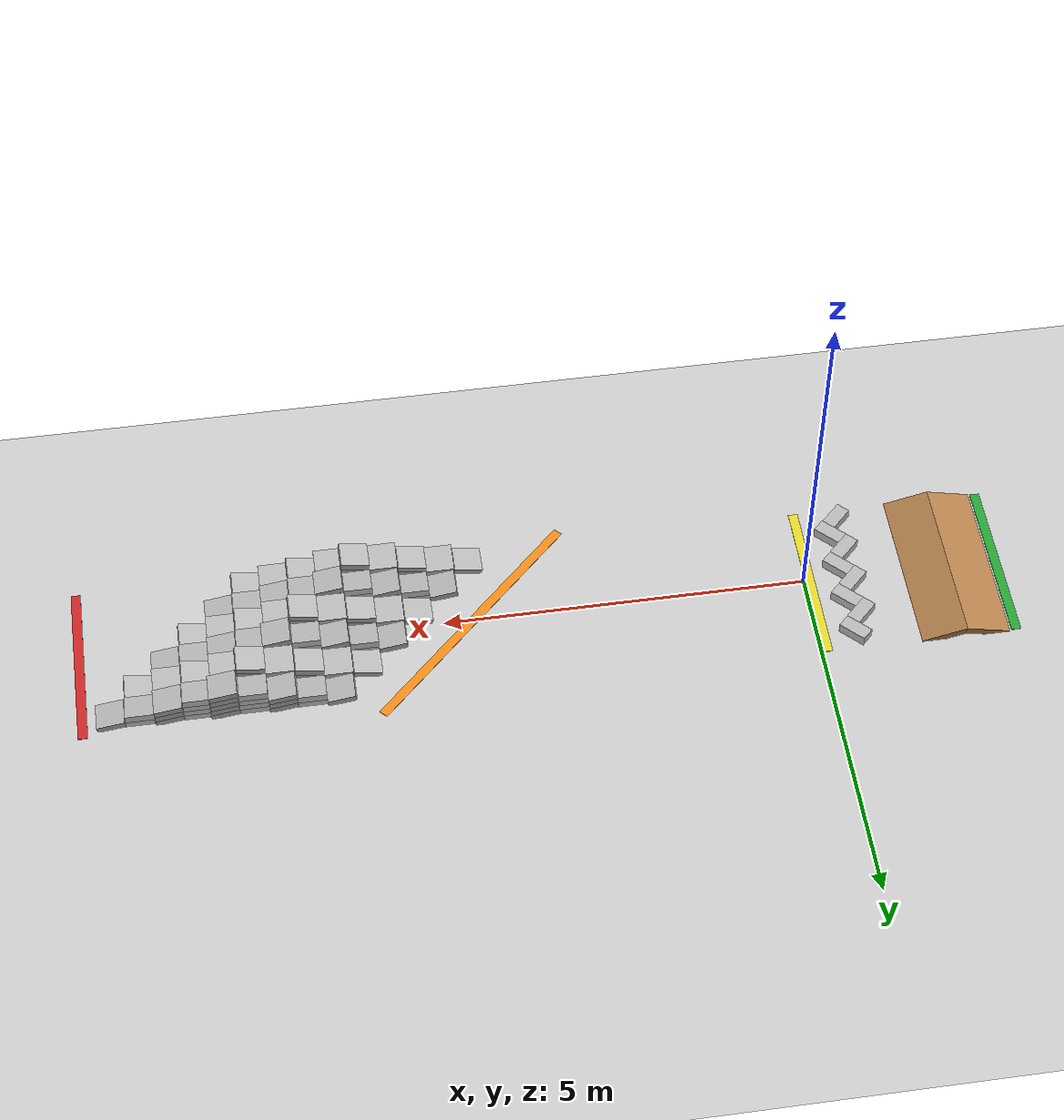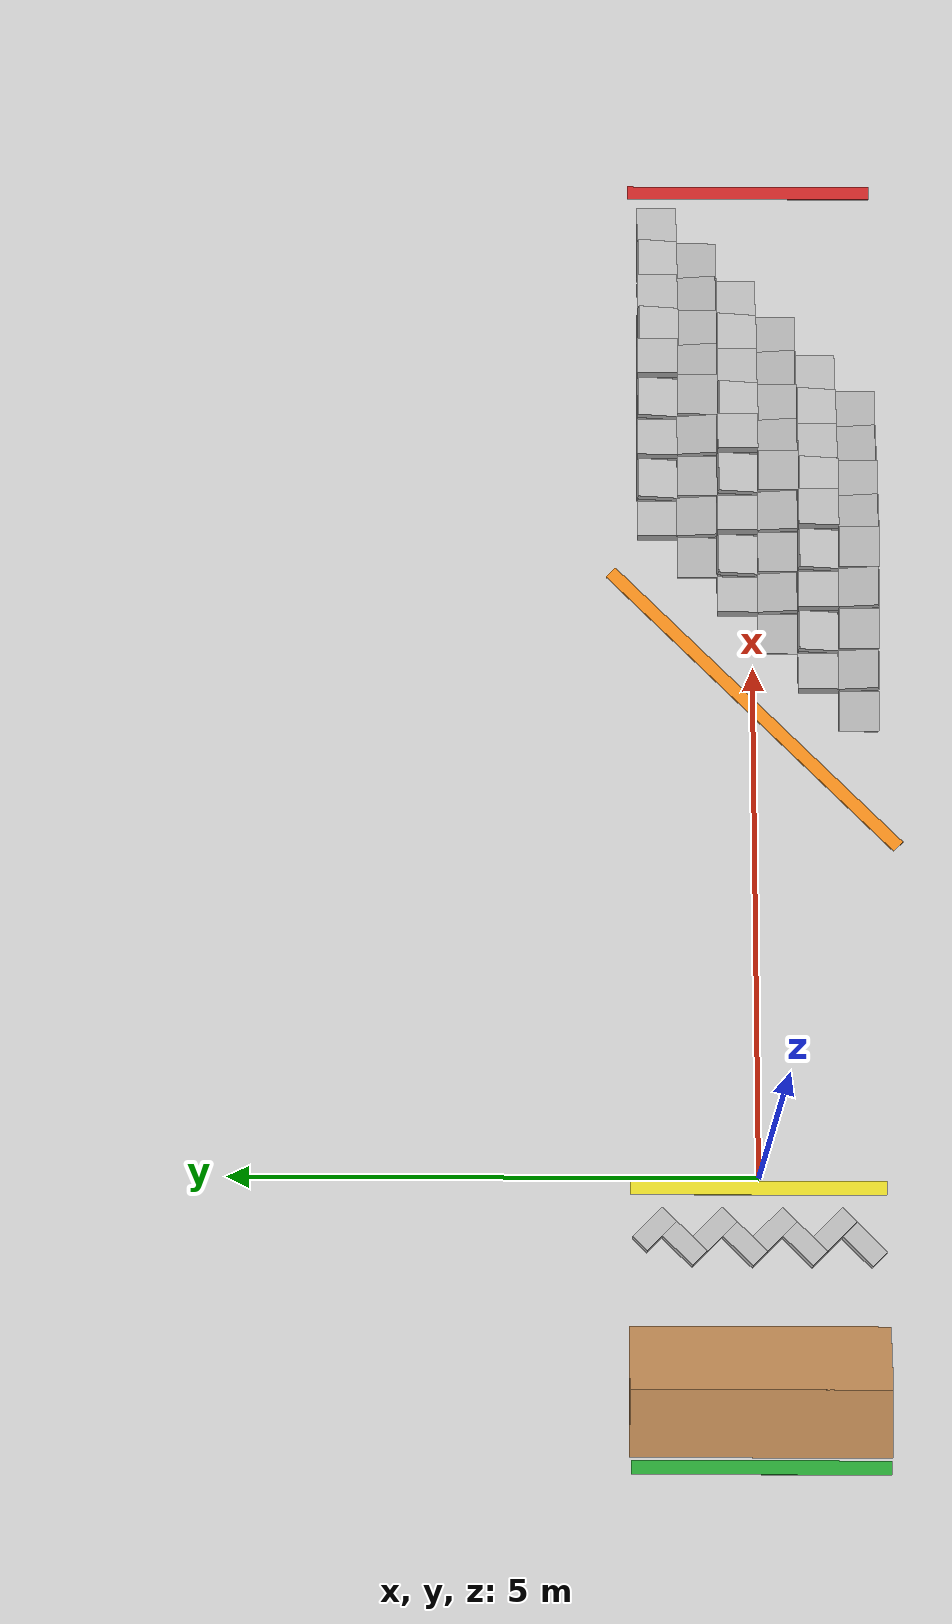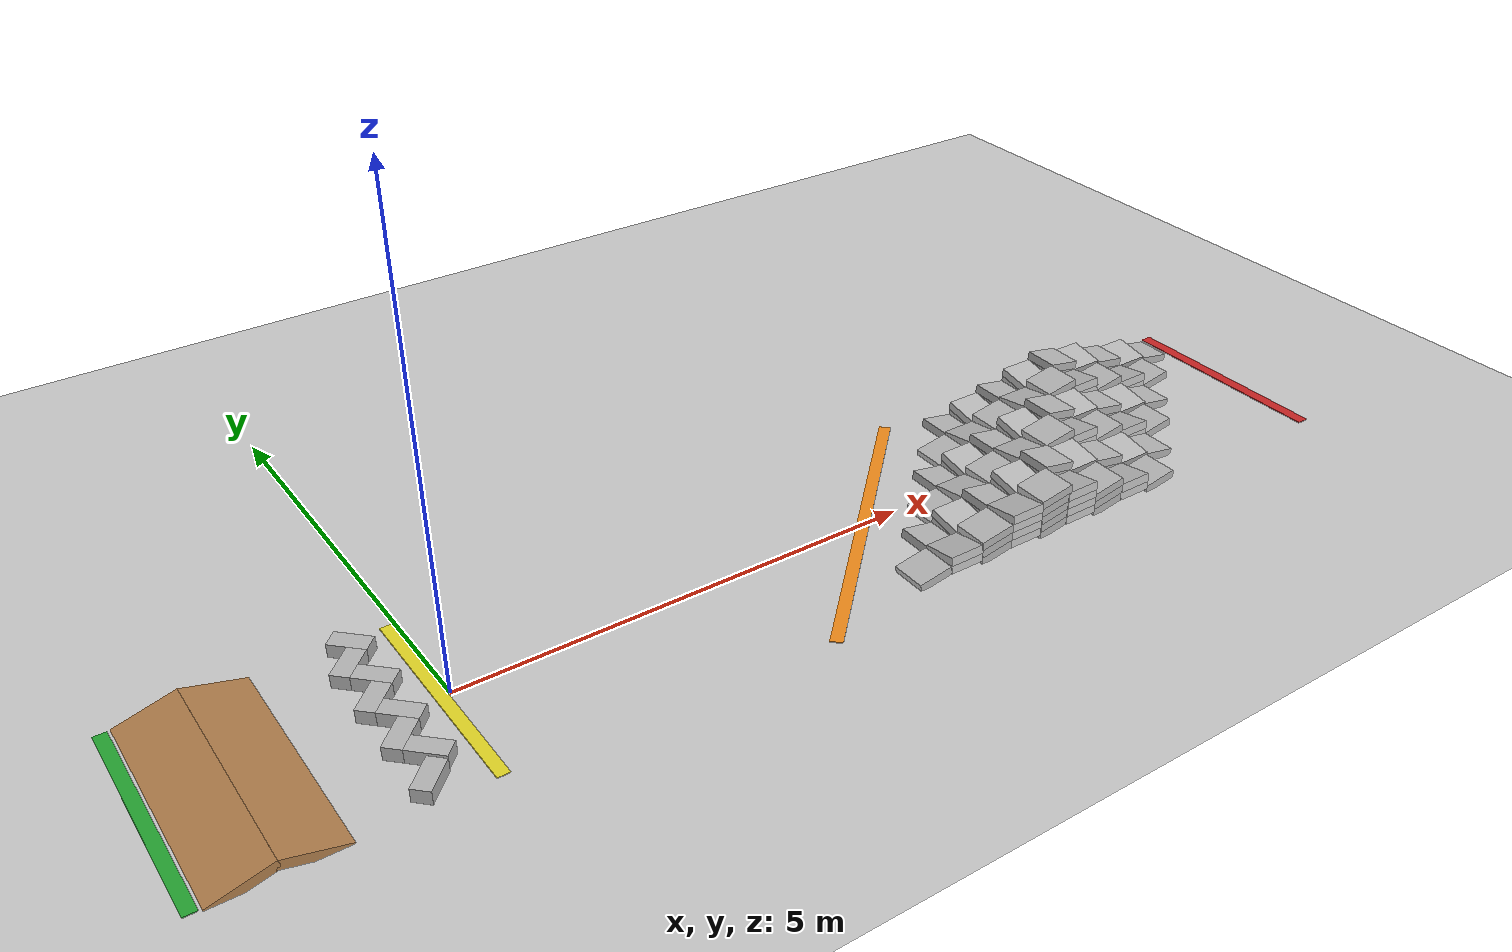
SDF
<sdf version="1.4">
 <world name="trials_task_2">
  <physics type="ode">
   <gravity>0 0 -9.81</gravity>
   <ode>
    <solver>
     <use_dynamic_moi_rescaling>true</use_dynamic_moi_rescaling>
     <type>quick</type>
     <iters>50</iters>
     <sor>1.4</sor>
    </solver>
    <constraints>
     <cfm>0.0</cfm>
     <erp>0.2</erp>
     <contact_max_correcting_vel>100.0</contact_max_correcting_vel>
     <contact_surface_layer>0.0</contact_surface_layer>
    </constraints>
   </ode>
   <real_time_update_rate>1000</real_time_update_rate>
   <max_step_size>0.001</max_step_size>
  </physics>
  <include><uri>model://sun</uri></include>
  <include><uri>model://ground_plane</uri></include>
  <model name="green_tape">
   <static>true</static>
   <pose>-2.7 0 0 0 0 0</pose>
   <link name="link">
    <visual name="visual">
     <geometry><box><size>0.13 2.41 0.01</size></box></geometry>
     <material><script><name>Gazebo/Green</name></script></material>
    </visual>
   </link>
  </model>
  <model name="ramp_0">
   <pose>-2 0 0 0 0 0</pose>
   <static>true</static>
   <link name="link">
    <collision name="incline_collision">
     <pose>0.29175 0 0.0335 0 0.261799364 0</pose>
     <geometry><box><size>.631104356 2.43839619 .1</size></box></geometry>
    </collision>
    <visual name="incline_visual">
     <pose>0.29175 0 0.0335 0 0.261799364 0</pose>
     <geometry><box><size>.631104356 2.43839619 .1</size></box></geometry>
     <material><script><name>Gazebo/WoodFloor</name></script></material>
    </visual>
    <collision name="decline_collision">
     <pose>-0.29175 0 0.0335 0 -0.261799364 0</pose>
     <geometry><box><size>.631104356 2.43839619 .1</size></box></geometry>
    </collision>
    <visual name="decline_visual">
     <pose>-0.29175 0 0.0335 0 -0.261799364 0</pose>
     <geometry><box><size>.631104356 2.43839619 .1</size></box></geometry>
     <material><script><name>Gazebo/WoodFloor</name></script></material>
    </visual>
   </link>
  </model>
  <model name="wall_2">
   <static>true</static>
   <pose>-4.7 -1.247388158 0 0 0 0</pose>
   <include>
    <name>block_0</name>
    <uri>model://cinder_block_2</uri>
    <pose>4.058409714 0.265174984 0.073 0 0 0.785398163</pose>
   </include>
   <include>
    <name>block_3</name>
    <uri>model://cinder_block_2</uri>
    <pose>4.19535737 0.545809424 0.1 0 0 -0.785398163</pose>
   </include>
   <include>
    <name>block_5</name>
    <uri>model://cinder_block_2</uri>
    <pose>4.058409714 0.826440054 0.1 0 0 0.785398163</pose>
   </include>
   <include>
    <name>block_7</name>
    <uri>model://cinder_block_2</uri>
    <pose>4.19535737 1.107073224 0.1 0 0 -0.785398163</pose>
   </include>
   <include>
    <name>block_9</name>
    <uri>model://cinder_block_2</uri>
    <pose>4.058409714 1.387705886 0.1 0 0 0.785398163</pose>
   </include>
   <include>
    <name>block_11</name>
    <uri>model://cinder_block_2</uri>
    <pose>4.19535737 1.668339056 0.1 0 0 -0.785398163</pose>
   </include>
   <include>
    <name>block_13</name>
    <uri>model://cinder_block_2</uri>
    <pose>4.058409714 1.948972226 0.1 0 0 0.785398163</pose>
   </include>
   <include>
    <name>block_15</name>
    <uri>model://cinder_block_2</uri>
    <pose>4.19535737 2.229604888 0.1 0 0 -0.785398163</pose>
   </include>
  </model>
  <model name="yellow_tape">
   <static>true</static>
   <pose>-0.087 0 0 0 0 0</pose>
   <link name="link">
    <visual name="visual">
     <geometry><box><size>0.13 2.41 0.01</size></box></geometry>
     <material><script><name>Gazebo/Yellow</name></script></material>
    </visual>
   </link>
  </model>
  <model name="orange_tape">
   <static>true</static>
   <pose>4.6 0 0 0 0 -0.785397</pose>
   <link name="link">
    <visual name="visual">
     <geometry><box><size>0.13 3.89146 0.01</size></box></geometry>
     <material><script><name>Gazebo/Orange</name></script></material>
    </visual>
   </link>
  </model>
  <include>
   <static>true</static>
   <name>angle_block_2</name>
   <uri>model://block_angle_steps_1</uri>
   <pose>4.55974 -1.012 0 0 0 0</pose>
  </include>
  <include>
   <static>true</static>
   <name>angle_block_2</name>
   <uri>model://block_angle_steps_2</uri>
   <pose>9.56106065 0.917 0 0 0 3.14159</pose>
  </include>
  <model name="red_tape">
   <static>true</static>
   <pose>9.947 0 0 0 0 0</pose>
   <link name="link">
    <visual name="visual">
     <geometry><box><size>0.13 2.41 0.01</size></box></geometry>
     <material><script><name>Gazebo/Red</name></script></material>
    </visual>
   </link>
  </model>
  <plugin filename="libVRCPlugin.so" name="vrc_plugin">
   <atlas><model_name>atlas</model_name><pin_link>utorso</pin_link></atlas>
   <drc_vehicle>
    <model_name>drc_vehicle_xp900</model_name>
    <seat_link>polaris_ranger_xp900::chassis</seat_link>
   </drc_vehicle>
   <drc_fire_hose>
    <fire_hose_model>fire_hose</fire_hose_model>
    <coupling_link>coupling</coupling_link>
    <standpipe_model>standpipe</standpipe_model>
    <spout_link>standpipe</spout_link>
    <thread_pitch>-1000</thread_pitch>
    <coupling_relative_pose>1.17038e-05 -0.125623 0.35 -0.0412152 -1.57078 1.61199</coupling_relative_pose>
   </drc_fire_hose>
  </plugin>
 </world>
</sdf>

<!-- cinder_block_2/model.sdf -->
<sdf version="1.5">
  <model name="cinder_block_2">
    <link name="link">
      <inertial>
        <pose>0 0 0.07 0 0 0</pose>
        <!-- volume about 0.0085 m^3, density 2000 kg/m^3 -->
        <mass>5</mass>
        <!-- approximate as uniform box 0.37 x 0.17 x 0.20 m -->
        <inertia>
          <ixx>0.06908</ixx>
          <ixy>0.0000</ixy>
          <iyy>0.028705</iyy>
          <ixz>0.0000</ixz>
          <iyz>0.0000</iyz>
          <izz>0.073708</izz>
        </inertia>
      </inertial>
      <visual name="visual">
        <geometry>
	  <box>
		<size>0.396875 0.19368008 0.146</size>
	  </box>
        </geometry>
      </visual>
      <collision name="collision_box">
        <pose>0 0 0 0 0 0</pose>
        <geometry>
          <box>
            <size>0.396875 0.19368008 0.146</size>
          </box>
        </geometry>
        <surface>
          <contact>
            <ode>
              <max_vel>0.1</max_vel>
              <min_depth>0.001</min_depth>
            </ode>
          </contact>
          <friction>
            <ode>
              <mu>1.0</mu>
              <mu2>1.0</mu2>
            </ode>
          </friction>
        </surface>
      </collision>
    </link>
  </model>
</sdf>

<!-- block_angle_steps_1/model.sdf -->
<sdf version="1.4">

  <model name="block_level_steps">
    <pose>0 0 0.0465 0 0 0</pose>

          <include>
            <name>"block_0_0"</name>
            <pose> 0.0 0.0 0.0465 -0.17453292519943295 0.0 1.570796 </pose>
            <uri>model://cinder_block_wide</uri>
          </include>

          <include>
            <name>"block_0_1"</name>
            <pose> 0.387353556 0.0 0.0465 0.0 0.17453292519943295 1.570796 </pose>
            <uri>model://cinder_block_wide</uri>
          </include>

          <include>
            <name>"block_0_1"</name>
            <pose> 0.387353556 0.0 0.1395 0.0 0.17453292519943295 1.570796 </pose>
            <uri>model://cinder_block_wide</uri>
          </include>

          <include>
            <name>"block_0_2"</name>
            <pose> 0.774707112 0.0 0.23249999999999998 -0.17453292519943295 0.0 1.570796 </pose>
            <uri>model://cinder_block_wide</uri>
          </include>

          <include>
            <name>"block_0_2"</name>
            <pose> 0.774707112 0.0 0.1395 -0.17453292519943295 0.0 1.570796 </pose>
            <uri>model://cinder_block_wide</uri>
          </include>

          <include>
            <name>"block_0_2"</name>
            <pose> 0.774707112 0.0 0.0465 -0.17453292519943295 0.0 1.570796 </pose>
            <uri>model://cinder_block_wide</uri>
          </include>

          <include>
            <name>"block_0_3"</name>
            <pose> 1.162060668 0.0 0.3255 0.0 0.17453292519943295 1.570796 </pose>
            <uri>model://cinder_block_wide</uri>
          </include>

          <include>
            <name>"block_0_3"</name>
            <pose> 1.162060668 0.0 0.23249999999999998 0.0 0.17453292519943295 1.570796 </pose>
            <uri>model://cinder_block_wide</uri>
          </include>

          <include>
            <name>"block_0_3"</name>
            <pose> 1.162060668 0.0 0.1395 0.0 0.17453292519943295 1.570796 </pose>
            <uri>model://cinder_block_wide</uri>
          </include>

          <include>
            <name>"block_0_3"</name>
            <pose> 1.162060668 0.0 0.0465 0.0 0.17453292519943295 1.570796 </pose>
            <uri>model://cinder_block_wide</uri>
          </include>

          <include>
            <name>"block_0_4"</name>
            <pose> 1.549414224 0.0 0.4185 -0.17453292519943295 0.0 1.570796 </pose>
            <uri>model://cinder_block_wide</uri>
          </include>

          <include>
            <name>"block_0_4"</name>
            <pose> 1.549414224 0.0 0.3255 -0.17453292519943295 0.0 1.570796 </pose>
            <uri>model://cinder_block_wide</uri>
          </include>

          <include>
            <name>"block_0_4"</name>
            <pose> 1.549414224 0.0 0.23249999999999998 -0.17453292519943295 0.0 1.570796 </pose>
            <uri>model://cinder_block_wide</uri>
          </include>

          <include>
            <name>"block_0_4"</name>
            <pose> 1.549414224 0.0 0.1395 -0.17453292519943295 0.0 1.570796 </pose>
            <uri>model://cinder_block_wide</uri>
          </include>

          <include>
            <name>"block_0_4"</name>
            <pose> 1.549414224 0.0 0.0465 -0.17453292519943295 0.0 1.570796 </pose>
            <uri>model://cinder_block_wide</uri>
          </include>

          <include>
            <name>"block_1_0"</name>
            <pose> 0.387353556 0.387353556 0.0465 0.17453292519943295 0.0 1.570796 </pose>
            <uri>model://cinder_block_wide</uri>
          </include>

          <include>
            <name>"block_1_1"</name>
            <pose> 0.774707112 0.387353556 0.0465 0.0 -0.17453292519943295 1.570796 </pose>
            <uri>model://cinder_block_wide</uri>
          </include>

          <include>
            <name>"block_1_1"</name>
            <pose> 0.774707112 0.387353556 0.1395 0.0 -0.17453292519943295 1.570796 </pose>
            <uri>model://cinder_block_wide</uri>
          </include>

          <include>
            <name>"block_1_2"</name>
            <pose> 1.162060668 0.387353556 0.23249999999999998 0.17453292519943295 0.0 1.570796 </pose>
            <uri>model://cinder_block_wide</uri>
          </include>

          <include>
            <name>"block_1_2"</name>
            <pose> 1.162060668 0.387353556 0.1395 0.17453292519943295 0.0 1.570796 </pose>
            <uri>model://cinder_block_wide</uri>
          </include>

          <include>
            <name>"block_1_2"</name>
            <pose> 1.162060668 0.387353556 0.0465 0.17453292519943295 0.0 1.570796 </pose>
            <uri>model://cinder_block_wide</uri>
          </include>

          <include>
            <name>"block_1_3"</name>
            <pose> 1.549414224 0.387353556 0.3255 0.0 -0.17453292519943295 1.570796 </pose>
            <uri>model://cinder_block_wide</uri>
          </include>

          <include>
            <name>"block_1_3"</name>
            <pose> 1.549414224 0.387353556 0.23249999999999998 0.0 -0.17453292519943295 1.570796 </pose>
            <uri>model://cinder_block_wide</uri>
          </include>

          <include>
            <name>"block_1_3"</name>
            <pose> 1.549414224 0.387353556 0.1395 0.0 -0.17453292519943295 1.570796 </pose>
            <uri>model://cinder_block_wide</uri>
          </include>

          <include>
            <name>"block_1_3"</name>
            <pose> 1.549414224 0.387353556 0.0465 0.0 -0.17453292519943295 1.570796 </pose>
            <uri>model://cinder_block_wide</uri>
          </include>

          <include>
            <name>"block_1_4"</name>
            <pose> 1.9367677799999998 0.387353556 0.4185 0.17453292519943295 0.0 1.570796 </pose>
            <uri>model://cinder_block_wide</uri>
          </include>

          <include>
            <name>"block_1_4"</name>
            <pose> 1.9367677799999998 0.387353556 0.3255 0.17453292519943295 0.0 1.570796 </pose>
            <uri>model://cinder_block_wide</uri>
          </include>

          <include>
            <name>"block_1_4"</name>
            <pose> 1.9367677799999998 0.387353556 0.23249999999999998 0.17453292519943295 0.0 1.570796 </pose>
            <uri>model://cinder_block_wide</uri>
          </include>

          <include>
            <name>"block_1_4"</name>
            <pose> 1.9367677799999998 0.387353556 0.1395 0.17453292519943295 0.0 1.570796 </pose>
            <uri>model://cinder_block_wide</uri>
          </include>

          <include>
            <name>"block_1_4"</name>
            <pose> 1.9367677799999998 0.387353556 0.0465 0.17453292519943295 0.0 1.570796 </pose>
            <uri>model://cinder_block_wide</uri>
          </include>

          <include>
            <name>"block_2_0"</name>
            <pose> 0.774707112 0.774707112 0.0465 -0.17453292519943295 0.0 1.570796 </pose>
            <uri>model://cinder_block_wide</uri>
          </include>

          <include>
            <name>"block_2_1"</name>
            <pose> 1.162060668 0.774707112 0.0465 0.0 0.17453292519943295 1.570796 </pose>
            <uri>model://cinder_block_wide</uri>
          </include>

          <include>
            <name>"block_2_1"</name>
            <pose> 1.162060668 0.774707112 0.1395 0.0 0.17453292519943295 1.570796 </pose>
            <uri>model://cinder_block_wide</uri>
          </include>

          <include>
            <name>"block_2_2"</name>
            <pose> 1.549414224 0.774707112 0.23249999999999998 -0.17453292519943295 0.0 1.570796 </pose>
            <uri>model://cinder_block_wide</uri>
          </include>

          <include>
            <name>"block_2_2"</name>
            <pose> 1.549414224 0.774707112 0.1395 -0.17453292519943295 0.0 1.570796 </pose>
            <uri>model://cinder_block_wide</uri>
          </include>

          <include>
            <name>"block_2_2"</name>
            <pose> 1.549414224 0.774707112 0.0465 -0.17453292519943295 0.0 1.570796 </pose>
            <uri>model://cinder_block_wide</uri>
          </include>

          <include>
            <name>"block_2_3"</name>
            <pose> 1.93676778 0.774707112 0.3255 0.0 0.17453292519943295 1.570796 </pose>
            <uri>model://cinder_block_wide</uri>
          </include>

          <include>
            <name>"block_2_3"</name>
            <pose> 1.93676778 0.774707112 0.23249999999999998 0.0 0.17453292519943295 1.570796 </pose>
            <uri>model://cinder_block_wide</uri>
          </include>

          <include>
            <name>"block_2_3"</name>
            <pose> 1.93676778 0.774707112 0.1395 0.0 0.17453292519943295 1.570796 </pose>
            <uri>model://cinder_block_wide</uri>
          </include>

          <include>
            <name>"block_2_3"</name>
            <pose> 1.93676778 0.774707112 0.0465 0.0 0.17453292519943295 1.570796 </pose>
            <uri>model://cinder_block_wide</uri>
          </include>

          <include>
            <name>"block_2_4"</name>
            <pose> 2.324121336 0.774707112 0.4185 -0.17453292519943295 0.0 1.570796 </pose>
            <uri>model://cinder_block_wide</uri>
          </include>

          <include>
            <name>"block_2_4"</name>
            <pose> 2.324121336 0.774707112 0.3255 -0.17453292519943295 0.0 1.570796 </pose>
            <uri>model://cinder_block_wide</uri>
          </include>

          <include>
            <name>"block_2_4"</name>
            <pose> 2.324121336 0.774707112 0.23249999999999998 -0.17453292519943295 0.0 1.570796 </pose>
            <uri>model://cinder_block_wide</uri>
          </include>

          <include>
            <name>"block_2_4"</name>
            <pose> 2.324121336 0.774707112 0.1395 -0.17453292519943295 0.0 1.570796 </pose>
            <uri>model://cinder_block_wide</uri>
          </include>

          <include>
            <name>"block_2_4"</name>
            <pose> 2.324121336 0.774707112 0.0465 -0.17453292519943295 0.0 1.570796 </pose>
            <uri>model://cinder_block_wide</uri>
          </include>

          <include>
            <name>"block_3_0"</name>
            <pose> 1.162060668 1.162060668 0.0465 0.17453292519943295 0.0 1.570796 </pose>
            <uri>model://cinder_block_wide</uri>
          </include>

          <include>
            <name>"block_3_1"</name>
            <pose> 1.549414224 1.162060668 0.0465 0.0 -0.17453292519943295 1.570796 </pose>
            <uri>model://cinder_block_wide</uri>
          </include>

          <include>
            <name>"block_3_1"</name>
            <pose> 1.549414224 1.162060668 0.1395 0.0 -0.17453292519943295 1.570796 </pose>
            <uri>model://cinder_block_wide</uri>
          </include>

          <include>
            <name>"block_3_2"</name>
            <pose> 1.93676778 1.162060668 0.23249999999999998 0.17453292519943295 0.0 1.570796 </pose>
            <uri>model://cinder_block_wide</uri>
          </include>

          <include>
            <name>"block_3_2"</name>
            <pose> 1.93676778 1.162060668 0.1395 0.17453292519943295 0.0 1.570796 </pose>
            <uri>model://cinder_block_wide</uri>
          </include>

          <include>
            <name>"block_3_2"</name>
            <pose> 1.93676778 1.162060668 0.0465 0.17453292519943295 0.0 1.570796 </pose>
            <uri>model://cinder_block_wide</uri>
          </include>

          <include>
            <name>"block_3_3"</name>
            <pose> 2.324121336 1.162060668 0.3255 0.0 -0.17453292519943295 1.570796 </pose>
            <uri>model://cinder_block_wide</uri>
          </include>

          <include>
            <name>"block_3_3"</name>
            <pose> 2.324121336 1.162060668 0.23249999999999998 0.0 -0.17453292519943295 1.570796 </pose>
            <uri>model://cinder_block_wide</uri>
          </include>

          <include>
            <name>"block_3_3"</name>
            <pose> 2.324121336 1.162060668 0.1395 0.0 -0.17453292519943295 1.570796 </pose>
            <uri>model://cinder_block_wide</uri>
          </include>

          <include>
            <name>"block_3_3"</name>
            <pose> 2.324121336 1.162060668 0.0465 0.0 -0.17453292519943295 1.570796 </pose>
            <uri>model://cinder_block_wide</uri>
          </include>

          <include>
            <name>"block_3_4"</name>
            <pose> 2.711474892 1.162060668 0.4185 0.17453292519943295 0.0 1.570796 </pose>
            <uri>model://cinder_block_wide</uri>
          </include>

          <include>
            <name>"block_3_4"</name>
            <pose> 2.711474892 1.162060668 0.3255 0.17453292519943295 0.0 1.570796 </pose>
            <uri>model://cinder_block_wide</uri>
          </include>

          <include>
            <name>"block_3_4"</name>
            <pose> 2.711474892 1.162060668 0.23249999999999998 0.17453292519943295 0.0 1.570796 </pose>
            <uri>model://cinder_block_wide</uri>
          </include>

          <include>
            <name>"block_3_4"</name>
            <pose> 2.711474892 1.162060668 0.1395 0.17453292519943295 0.0 1.570796 </pose>
            <uri>model://cinder_block_wide</uri>
          </include>

          <include>
            <name>"block_3_4"</name>
            <pose> 2.711474892 1.162060668 0.0465 0.17453292519943295 0.0 1.570796 </pose>
            <uri>model://cinder_block_wide</uri>
          </include>

          <include>
            <name>"block_4_0"</name>
            <pose> 1.549414224 1.549414224 0.0465 -0.17453292519943295 0.0 1.570796 </pose>
            <uri>model://cinder_block_wide</uri>
          </include>

          <include>
            <name>"block_4_1"</name>
            <pose> 1.9367677799999998 1.549414224 0.0465 0.0 0.17453292519943295 1.570796 </pose>
            <uri>model://cinder_block_wide</uri>
          </include>

          <include>
            <name>"block_4_1"</name>
            <pose> 1.9367677799999998 1.549414224 0.1395 0.0 0.17453292519943295 1.570796 </pose>
            <uri>model://cinder_block_wide</uri>
          </include>

          <include>
            <name>"block_4_2"</name>
            <pose> 2.324121336 1.549414224 0.23249999999999998 -0.17453292519943295 0.0 1.570796 </pose>
            <uri>model://cinder_block_wide</uri>
          </include>

          <include>
            <name>"block_4_2"</name>
            <pose> 2.324121336 1.549414224 0.1395 -0.17453292519943295 0.0 1.570796 </pose>
            <uri>model://cinder_block_wide</uri>
          </include>

          <include>
            <name>"block_4_2"</name>
            <pose> 2.324121336 1.549414224 0.0465 -0.17453292519943295 0.0 1.570796 </pose>
            <uri>model://cinder_block_wide</uri>
          </include>

          <include>
            <name>"block_4_3"</name>
            <pose> 2.711474892 1.549414224 0.3255 0.0 0.17453292519943295 1.570796 </pose>
            <uri>model://cinder_block_wide</uri>
          </include>

          <include>
            <name>"block_4_3"</name>
            <pose> 2.711474892 1.549414224 0.23249999999999998 0.0 0.17453292519943295 1.570796 </pose>
            <uri>model://cinder_block_wide</uri>
          </include>

          <include>
            <name>"block_4_3"</name>
            <pose> 2.711474892 1.549414224 0.1395 0.0 0.17453292519943295 1.570796 </pose>
            <uri>model://cinder_block_wide</uri>
          </include>

          <include>
            <name>"block_4_3"</name>
            <pose> 2.711474892 1.549414224 0.0465 0.0 0.17453292519943295 1.570796 </pose>
            <uri>model://cinder_block_wide</uri>
          </include>

          <include>
            <name>"block_4_4"</name>
            <pose> 3.098828448 1.549414224 0.4185 -0.17453292519943295 0.0 1.570796 </pose>
            <uri>model://cinder_block_wide</uri>
          </include>

          <include>
            <name>"block_4_4"</name>
            <pose> 3.098828448 1.549414224 0.3255 -0.17453292519943295 0.0 1.570796 </pose>
            <uri>model://cinder_block_wide</uri>
          </include>

          <include>
            <name>"block_4_4"</name>
            <pose> 3.098828448 1.549414224 0.23249999999999998 -0.17453292519943295 0.0 1.570796 </pose>
            <uri>model://cinder_block_wide</uri>
          </include>

          <include>
            <name>"block_4_4"</name>
            <pose> 3.098828448 1.549414224 0.1395 -0.17453292519943295 0.0 1.570796 </pose>
            <uri>model://cinder_block_wide</uri>
          </include>

          <include>
            <name>"block_4_4"</name>
            <pose> 3.098828448 1.549414224 0.0465 -0.17453292519943295 0.0 1.570796 </pose>
            <uri>model://cinder_block_wide</uri>
          </include>

          <include>
            <name>"block_5_0"</name>
            <pose> 1.9367677799999998 1.9367677799999998 0.0465 0.17453292519943295 0.0 1.570796 </pose>
            <uri>model://cinder_block_wide</uri>
          </include>

          <include>
            <name>"block_5_1"</name>
            <pose> 2.3241213359999997 1.9367677799999998 0.0465 0.0 -0.17453292519943295 1.570796 </pose>
            <uri>model://cinder_block_wide</uri>
          </include>

          <include>
            <name>"block_5_1"</name>
            <pose> 2.3241213359999997 1.9367677799999998 0.1395 0.0 -0.17453292519943295 1.570796 </pose>
            <uri>model://cinder_block_wide</uri>
          </include>

          <include>
            <name>"block_5_2"</name>
            <pose> 2.711474892 1.9367677799999998 0.23249999999999998 0.17453292519943295 0.0 1.570796 </pose>
            <uri>model://cinder_block_wide</uri>
          </include>

          <include>
            <name>"block_5_2"</name>
            <pose> 2.711474892 1.9367677799999998 0.1395 0.17453292519943295 0.0 1.570796 </pose>
            <uri>model://cinder_block_wide</uri>
          </include>

          <include>
            <name>"block_5_2"</name>
            <pose> 2.711474892 1.9367677799999998 0.0465 0.17453292519943295 0.0 1.570796 </pose>
            <uri>model://cinder_block_wide</uri>
          </include>

          <include>
            <name>"block_5_3"</name>
            <pose> 3.098828448 1.9367677799999998 0.3255 0.0 -0.17453292519943295 1.570796 </pose>
            <uri>model://cinder_block_wide</uri>
          </include>

          <include>
            <name>"block_5_3"</name>
            <pose> 3.098828448 1.9367677799999998 0.23249999999999998 0.0 -0.17453292519943295 1.570796 </pose>
            <uri>model://cinder_block_wide</uri>
          </include>

          <include>
            <name>"block_5_3"</name>
            <pose> 3.098828448 1.9367677799999998 0.1395 0.0 -0.17453292519943295 1.570796 </pose>
            <uri>model://cinder_block_wide</uri>
          </include>

          <include>
            <name>"block_5_3"</name>
            <pose> 3.098828448 1.9367677799999998 0.0465 0.0 -0.17453292519943295 1.570796 </pose>
            <uri>model://cinder_block_wide</uri>
          </include>

          <include>
            <name>"block_5_4"</name>
            <pose> 3.486182004 1.9367677799999998 0.4185 0.17453292519943295 0.0 1.570796 </pose>
            <uri>model://cinder_block_wide</uri>
          </include>

          <include>
            <name>"block_5_4"</name>
            <pose> 3.486182004 1.9367677799999998 0.3255 0.17453292519943295 0.0 1.570796 </pose>
            <uri>model://cinder_block_wide</uri>
          </include>

          <include>
            <name>"block_5_4"</name>
            <pose> 3.486182004 1.9367677799999998 0.23249999999999998 0.17453292519943295 0.0 1.570796 </pose>
            <uri>model://cinder_block_wide</uri>
          </include>

          <include>
            <name>"block_5_4"</name>
            <pose> 3.486182004 1.9367677799999998 0.1395 0.17453292519943295 0.0 1.570796 </pose>
            <uri>model://cinder_block_wide</uri>
          </include>

          <include>
            <name>"block_5_4"</name>
            <pose> 3.486182004 1.9367677799999998 0.0465 0.17453292519943295 0.0 1.570796 </pose>
            <uri>model://cinder_block_wide</uri>
          </include>

  </model>

</sdf>

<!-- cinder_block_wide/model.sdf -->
<sdf version="1.5">
  <model name="cinder_block_wide">
    <link name="link">
      <inertial>
        <pose>0 0 0.0714375 0 0 0</pose>
        <mass>5</mass>
        <!-- approximate as uniform box 0.387 x 0.387 x 0.092 m -->
        <inertia>
          <ixx>0.06814656666666667</ixx>
          <ixy>0.0000</ixy>
          <iyy>0.06814656666666667</iyy>
          <ixz>0.0000</ixz>
          <iyz>0.0000</iyz>
          <izz>0.1248075</izz>
        </inertia>
      </inertial>
      <visual name="visual">
        <geometry>

          <box>
            <size>0.387353556 0.387353556 0.092075</size>
          </box>
        </geometry>
      </visual>

      <collision name="block_collision">
       <pose>0 0 0 0 0 0</pose>
        <geometry>
          <box>
            <size>0.387353556 0.387353556 0.092075</size>
          </box>
        </geometry>
        <surface>
          <contact>
            <ode>
              <max_vel>0.1</max_vel>
              <min_depth>0.001</min_depth>
            </ode>
          </contact>
          <friction>
            <ode>
              <mu>1.0</mu>
              <mu2>1.0</mu2>
            </ode>
          </friction>
        </surface>

      </collision>

    </link>
  </model>
</sdf>

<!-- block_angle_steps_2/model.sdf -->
<sdf version="1.4">

  <model name="block_level_steps">
    <pose>0 0 0.0465 0 0 0</pose>

          <include>
            <name>"block_0_0"</name>
            <pose>  0.0 0.0 0.0465 -0.17453292519943295 0.0 1.570796 </pose>
            <uri>model://cinder_block_wide</uri>
          </include>

          <include>
            <name>"block_0_1"</name>
            <pose>  0.387353556 0.0 0.1395 0.0 0.17453292519943295 1.570796 </pose>
            <uri>model://cinder_block_wide</uri>
          </include>

          <include>
            <name>"block_0_1"</name>
            <pose>  0.387353556 0.0 0.0465 0.0 0.17453292519943295 1.570796 </pose>
            <uri>model://cinder_block_wide</uri>
          </include>

          <include>
            <name>"block_0_2"</name>
            <pose>  0.774707112 0.0 0.23249999999999998 -0.17453292519943295 0.0 1.570796 </pose>
            <uri>model://cinder_block_wide</uri>
          </include>

          <include>
            <name>"block_0_2"</name>
            <pose>  0.774707112 0.0 0.1395 -0.17453292519943295 0.0 1.570796 </pose>
            <uri>model://cinder_block_wide</uri>
          </include>

          <include>
            <name>"block_0_2"</name>
            <pose>  0.774707112 0.0 0.0465 -0.17453292519943295 0.0 1.570796 </pose>
            <uri>model://cinder_block_wide</uri>
          </include>

          <include>
            <name>"block_0_3"</name>
            <pose>  1.162060668 0.0 0.3255 0.0 0.17453292519943295 1.570796 </pose>
            <uri>model://cinder_block_wide</uri>
          </include>

          <include>
            <name>"block_0_3"</name>
            <pose>  1.162060668 0.0 0.23249999999999998 0.0 0.17453292519943295 1.570796 </pose>
            <uri>model://cinder_block_wide</uri>
          </include>

          <include>
            <name>"block_0_3"</name>
            <pose>  1.162060668 0.0 0.1395 0.0 0.17453292519943295 1.570796 </pose>
            <uri>model://cinder_block_wide</uri>
          </include>

          <include>
            <name>"block_0_3"</name>
            <pose>  1.162060668 0.0 0.0465 0.0 0.17453292519943295 1.570796 </pose>
            <uri>model://cinder_block_wide</uri>
          </include>

          <include>
            <name>"block_1_0"</name>
            <pose>  0.387353556 0.387353556 0.0465 0.17453292519943295 0.0 1.570796 </pose>
            <uri>model://cinder_block_wide</uri>
          </include>

          <include>
            <name>"block_1_1"</name>
            <pose>  0.774707112 0.387353556 0.1395 0.0 -0.17453292519943295 1.570796 </pose>
            <uri>model://cinder_block_wide</uri>
          </include>

          <include>
            <name>"block_1_1"</name>
            <pose>  0.774707112 0.387353556 0.0465 0.0 -0.17453292519943295 1.570796 </pose>
            <uri>model://cinder_block_wide</uri>
          </include>

          <include>
            <name>"block_1_2"</name>
            <pose>  1.162060668 0.387353556 0.23249999999999998 0.17453292519943295 0.0 1.570796 </pose>
            <uri>model://cinder_block_wide</uri>
          </include>

          <include>
            <name>"block_1_2"</name>
            <pose>  1.162060668 0.387353556 0.1395 0.17453292519943295 0.0 1.570796 </pose>
            <uri>model://cinder_block_wide</uri>
          </include>

          <include>
            <name>"block_1_2"</name>
            <pose>  1.162060668 0.387353556 0.0465 0.17453292519943295 0.0 1.570796 </pose>
            <uri>model://cinder_block_wide</uri>
          </include>

          <include>
            <name>"block_1_3"</name>
            <pose>  1.549414224 0.387353556 0.3255 0.0 -0.17453292519943295 1.570796 </pose>
            <uri>model://cinder_block_wide</uri>
          </include>

          <include>
            <name>"block_1_3"</name>
            <pose>  1.549414224 0.387353556 0.23249999999999998 0.0 -0.17453292519943295 1.570796 </pose>
            <uri>model://cinder_block_wide</uri>
          </include>

          <include>
            <name>"block_1_3"</name>
            <pose>  1.549414224 0.387353556 0.1395 0.0 -0.17453292519943295 1.570796 </pose>
            <uri>model://cinder_block_wide</uri>
          </include>

          <include>
            <name>"block_1_3"</name>
            <pose>  1.549414224 0.387353556 0.0465 0.0 -0.17453292519943295 1.570796 </pose>
            <uri>model://cinder_block_wide</uri>
          </include>

          <include>
            <name>"block_2_0"</name>
            <pose>  0.774707112 0.774707112 0.0465 -0.17453292519943295 0.0 1.570796 </pose>
            <uri>model://cinder_block_wide</uri>
          </include>

          <include>
            <name>"block_2_1"</name>
            <pose>  1.162060668 0.774707112 0.1395 0.0 0.17453292519943295 1.570796 </pose>
            <uri>model://cinder_block_wide</uri>
          </include>

          <include>
            <name>"block_2_1"</name>
            <pose>  1.162060668 0.774707112 0.0465 0.0 0.17453292519943295 1.570796 </pose>
            <uri>model://cinder_block_wide</uri>
          </include>

          <include>
            <name>"block_2_2"</name>
            <pose>  1.549414224 0.774707112 0.23249999999999998 -0.17453292519943295 0.0 1.570796 </pose>
            <uri>model://cinder_block_wide</uri>
          </include>

          <include>
            <name>"block_2_2"</name>
            <pose>  1.549414224 0.774707112 0.1395 -0.17453292519943295 0.0 1.570796 </pose>
            <uri>model://cinder_block_wide</uri>
          </include>

          <include>
            <name>"block_2_2"</name>
            <pose>  1.549414224 0.774707112 0.0465 -0.17453292519943295 0.0 1.570796 </pose>
            <uri>model://cinder_block_wide</uri>
          </include>

          <include>
            <name>"block_2_3"</name>
            <pose>  1.93676778 0.774707112 0.3255 0.0 0.17453292519943295 1.570796 </pose>
            <uri>model://cinder_block_wide</uri>
          </include>

          <include>
            <name>"block_2_3"</name>
            <pose>  1.93676778 0.774707112 0.23249999999999998 0.0 0.17453292519943295 1.570796 </pose>
            <uri>model://cinder_block_wide</uri>
          </include>

          <include>
            <name>"block_2_3"</name>
            <pose>  1.93676778 0.774707112 0.1395 0.0 0.17453292519943295 1.570796 </pose>
            <uri>model://cinder_block_wide</uri>
          </include>

          <include>
            <name>"block_2_3"</name>
            <pose>  1.93676778 0.774707112 0.0465 0.0 0.17453292519943295 1.570796 </pose>
            <uri>model://cinder_block_wide</uri>
          </include>

          <include>
            <name>"block_3_0"</name>
            <pose>  1.162060668 1.162060668 0.0465 0.17453292519943295 0.0 1.570796 </pose>
            <uri>model://cinder_block_wide</uri>
          </include>

          <include>
            <name>"block_3_1"</name>
            <pose>  1.549414224 1.162060668 0.1395 0.0 -0.17453292519943295 1.570796 </pose>
            <uri>model://cinder_block_wide</uri>
          </include>

          <include>
            <name>"block_3_1"</name>
            <pose>  1.549414224 1.162060668 0.0465 0.0 -0.17453292519943295 1.570796 </pose>
            <uri>model://cinder_block_wide</uri>
          </include>

          <include>
            <name>"block_3_2"</name>
            <pose>  1.93676778 1.162060668 0.23249999999999998 0.17453292519943295 0.0 1.570796 </pose>
            <uri>model://cinder_block_wide</uri>
          </include>

          <include>
            <name>"block_3_2"</name>
            <pose>  1.93676778 1.162060668 0.1395 0.17453292519943295 0.0 1.570796 </pose>
            <uri>model://cinder_block_wide</uri>
          </include>

          <include>
            <name>"block_3_2"</name>
            <pose>  1.93676778 1.162060668 0.0465 0.17453292519943295 0.0 1.570796 </pose>
            <uri>model://cinder_block_wide</uri>
          </include>

          <include>
            <name>"block_3_3"</name>
            <pose>  2.324121336 1.162060668 0.3255 0.0 -0.17453292519943295 1.570796 </pose>
            <uri>model://cinder_block_wide</uri>
          </include>

          <include>
            <name>"block_3_3"</name>
            <pose>  2.324121336 1.162060668 0.23249999999999998 0.0 -0.17453292519943295 1.570796 </pose>
            <uri>model://cinder_block_wide</uri>
          </include>

          <include>
            <name>"block_3_3"</name>
            <pose>  2.324121336 1.162060668 0.1395 0.0 -0.17453292519943295 1.570796 </pose>
            <uri>model://cinder_block_wide</uri>
          </include>

          <include>
            <name>"block_3_3"</name>
            <pose>  2.324121336 1.162060668 0.0465 0.0 -0.17453292519943295 1.570796 </pose>
            <uri>model://cinder_block_wide</uri>
          </include>

          <include>
            <name>"block_4_0"</name>
            <pose>  1.549414224 1.549414224 0.0465 -0.17453292519943295 0.0 1.570796 </pose>
            <uri>model://cinder_block_wide</uri>
          </include>

          <include>
            <name>"block_4_1"</name>
            <pose>  1.9367677799999998 1.549414224 0.1395 0.0 0.17453292519943295 1.570796 </pose>
            <uri>model://cinder_block_wide</uri>
          </include>

          <include>
            <name>"block_4_1"</name>
            <pose>  1.9367677799999998 1.549414224 0.0465 0.0 0.17453292519943295 1.570796 </pose>
            <uri>model://cinder_block_wide</uri>
          </include>

          <include>
            <name>"block_4_2"</name>
            <pose>  2.324121336 1.549414224 0.23249999999999998 -0.17453292519943295 0.0 1.570796 </pose>
            <uri>model://cinder_block_wide</uri>
          </include>

          <include>
            <name>"block_4_2"</name>
            <pose>  2.324121336 1.549414224 0.1395 -0.17453292519943295 0.0 1.570796 </pose>
            <uri>model://cinder_block_wide</uri>
          </include>

          <include>
            <name>"block_4_2"</name>
            <pose>  2.324121336 1.549414224 0.0465 -0.17453292519943295 0.0 1.570796 </pose>
            <uri>model://cinder_block_wide</uri>
          </include>

          <include>
            <name>"block_4_3"</name>
            <pose>  2.711474892 1.549414224 0.3255 0.0 0.17453292519943295 1.570796 </pose>
            <uri>model://cinder_block_wide</uri>
          </include>

          <include>
            <name>"block_4_3"</name>
            <pose>  2.711474892 1.549414224 0.23249999999999998 0.0 0.17453292519943295 1.570796 </pose>
            <uri>model://cinder_block_wide</uri>
          </include>

          <include>
            <name>"block_4_3"</name>
            <pose>  2.711474892 1.549414224 0.1395 0.0 0.17453292519943295 1.570796 </pose>
            <uri>model://cinder_block_wide</uri>
          </include>

          <include>
            <name>"block_4_3"</name>
            <pose>  2.711474892 1.549414224 0.0465 0.0 0.17453292519943295 1.570796 </pose>
            <uri>model://cinder_block_wide</uri>
          </include>

          <include>
            <name>"block_5_0"</name>
            <pose>  1.9367677799999998 1.9367677799999998 0.0465 0.17453292519943295 0.0 1.570796 </pose>
            <uri>model://cinder_block_wide</uri>
          </include>

          <include>
            <name>"block_5_1"</name>
            <pose>  2.3241213359999997 1.9367677799999998 0.1395 0.0 -0.17453292519943295 1.570796 </pose>
            <uri>model://cinder_block_wide</uri>
          </include>

          <include>
            <name>"block_5_1"</name>
            <pose>  2.3241213359999997 1.9367677799999998 0.0465 0.0 -0.17453292519943295 1.570796 </pose>
            <uri>model://cinder_block_wide</uri>
          </include>

          <include>
            <name>"block_5_2"</name>
            <pose>  2.711474892 1.9367677799999998 0.23249999999999998 0.17453292519943295 0.0 1.570796 </pose>
            <uri>model://cinder_block_wide</uri>
          </include>

          <include>
            <name>"block_5_2"</name>
            <pose>  2.711474892 1.9367677799999998 0.1395 0.17453292519943295 0.0 1.570796 </pose>
            <uri>model://cinder_block_wide</uri>
          </include>

          <include>
            <name>"block_5_2"</name>
            <pose>  2.711474892 1.9367677799999998 0.0465 0.17453292519943295 0.0 1.570796 </pose>
            <uri>model://cinder_block_wide</uri>
          </include>

          <include>
            <name>"block_5_3"</name>
            <pose>  3.098828448 1.9367677799999998 0.3255 0.0 -0.17453292519943295 1.570796 </pose>
            <uri>model://cinder_block_wide</uri>
          </include>

          <include>
            <name>"block_5_3"</name>
            <pose>  3.098828448 1.9367677799999998 0.23249999999999998 0.0 -0.17453292519943295 1.570796 </pose>
            <uri>model://cinder_block_wide</uri>
          </include>

          <include>
            <name>"block_5_3"</name>
            <pose>  3.098828448 1.9367677799999998 0.1395 0.0 -0.17453292519943295 1.570796 </pose>
            <uri>model://cinder_block_wide</uri>
          </include>

          <include>
            <name>"block_5_3"</name>
            <pose>  3.098828448 1.9367677799999998 0.0465 0.0 -0.17453292519943295 1.570796 </pose>
            <uri>model://cinder_block_wide</uri>
          </include>

  </model>

</sdf>
